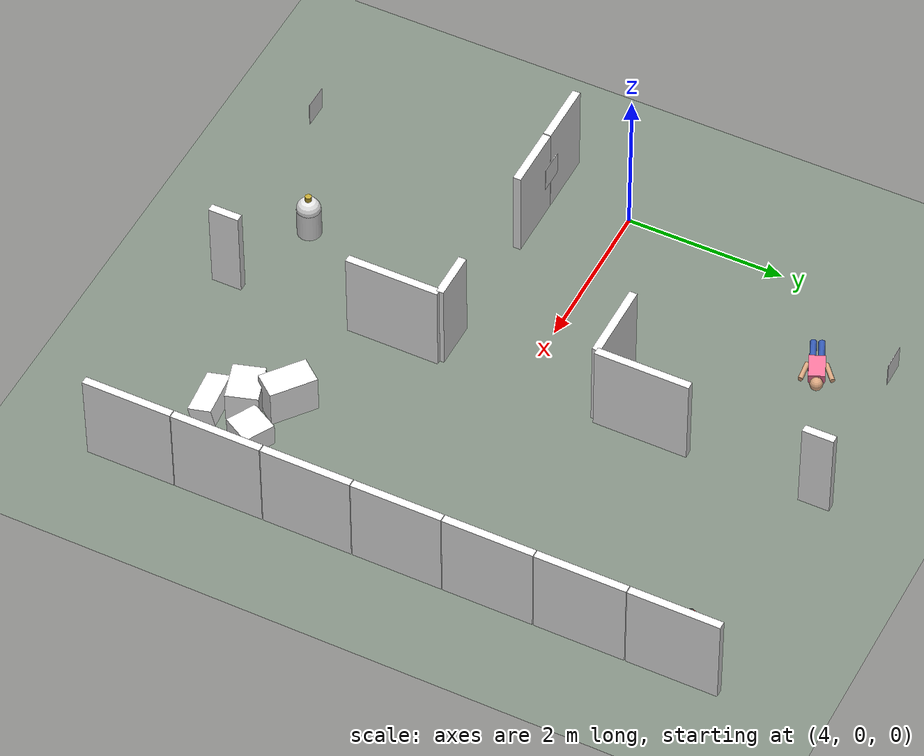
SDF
<sdf version="1.9">
 <world name="rescue_maze">
  <model name="ground_plane">
   <static>true</static>
   <link name="link">
    <collision name="collision">
     <geometry><plane><normal>0 0 1</normal><size>40 40</size></plane></geometry>
    </collision>
    <visual name="visual">
     <geometry><plane><normal>0 0 1</normal><size>40 40</size></plane></geometry>
     <material><ambient>0.5 0.55 0.5 1</ambient><diffuse>0.5 0.55 0.5 1</diffuse></material>
    </visual>
   </link>
  </model>
  <model name="wall_3">
   <static>true</static>
   <pose>10.000 0.000 0.6 0 0 1.5708</pose>
   <link name="link">
    <collision name="collision"><geometry><box><size>8.000 0.1 1.2</size></box></geometry></collision>
    <visual name="panel_0">
     <pose>-3.429 0 0 0 0 0</pose>
     <geometry><box><size>1.133 0.1 1.2</size></box></geometry>
     <material>
      <diffuse>1 1 1 1</diffuse>
      <specular>0.1 0.1 0.1 1</specular>
      <pbr>
       <metal><albedo_map>textures/plywood.jpg</albedo_map><roughness>0.9</roughness><metalness>0</metalness></metal>
      </pbr>
     </material>
    </visual>
    <visual name="panel_1">
     <pose>-2.286 0 0 0 0 0</pose>
     <geometry><box><size>1.133 0.1 1.2</size></box></geometry>
     <material>
      <diffuse>1 1 1 1</diffuse>
      <specular>0.1 0.1 0.1 1</specular>
      <pbr>
       <metal><albedo_map>textures/plywood.jpg</albedo_map><roughness>0.9</roughness><metalness>0</metalness></metal>
      </pbr>
     </material>
    </visual>
    <visual name="panel_2">
     <pose>-1.143 0 0 0 0 0</pose>
     <geometry><box><size>1.133 0.1 1.2</size></box></geometry>
     <material>
      <diffuse>1 1 1 1</diffuse>
      <specular>0.1 0.1 0.1 1</specular>
      <pbr>
       <metal><albedo_map>textures/plywood.jpg</albedo_map><roughness>0.9</roughness><metalness>0</metalness></metal>
      </pbr>
     </material>
    </visual>
    <visual name="panel_3">
     <geometry><box><size>1.133 0.1 1.2</size></box></geometry>
     <material>
      <diffuse>1 1 1 1</diffuse>
      <specular>0.1 0.1 0.1 1</specular>
      <pbr>
       <metal><albedo_map>textures/plywood.jpg</albedo_map><roughness>0.9</roughness><metalness>0</metalness></metal>
      </pbr>
     </material>
    </visual>
    <visual name="panel_4">
     <pose>1.143 0 0 0 0 0</pose>
     <geometry><box><size>1.133 0.1 1.2</size></box></geometry>
     <material>
      <diffuse>1 1 1 1</diffuse>
      <specular>0.1 0.1 0.1 1</specular>
      <pbr>
       <metal><albedo_map>textures/plywood.jpg</albedo_map><roughness>0.9</roughness><metalness>0</metalness></metal>
      </pbr>
     </material>
    </visual>
    <visual name="panel_5">
     <pose>2.286 0 0 0 0 0</pose>
     <geometry><box><size>1.133 0.1 1.2</size></box></geometry>
     <material>
      <diffuse>1 1 1 1</diffuse>
      <specular>0.1 0.1 0.1 1</specular>
      <pbr>
       <metal><albedo_map>textures/plywood.jpg</albedo_map><roughness>0.9</roughness><metalness>0</metalness></metal>
      </pbr>
     </material>
    </visual>
    <visual name="panel_6">
     <pose>3.429 0 0 0 0 0</pose>
     <geometry><box><size>1.133 0.1 1.2</size></box></geometry>
     <material>
      <diffuse>1 1 1 1</diffuse>
      <specular>0.1 0.1 0.1 1</specular>
      <pbr>
       <metal><albedo_map>textures/plywood.jpg</albedo_map><roughness>0.9</roughness><metalness>0</metalness></metal>
      </pbr>
     </material>
    </visual>
   </link>
  </model>
  <model name="wall_6">
   <static>true</static>
   <pose>6.500 1.000 0.6 0 0 0.0000</pose>
   <link name="link">
    <collision name="collision"><geometry><box><size>1.000 0.1 1.2</size></box></geometry></collision>
    <visual name="panel_0">
     <geometry><box><size>0.990 0.1 1.2</size></box></geometry>
     <material>
      <diffuse>1 1 1 1</diffuse>
      <specular>0.1 0.1 0.1 1</specular>
      <pbr>
       <metal><albedo_map>textures/plywood.jpg</albedo_map><roughness>0.9</roughness><metalness>0</metalness></metal>
      </pbr>
     </material>
    </visual>
   </link>
  </model>
  <model name="wall_8">
   <static>true</static>
   <pose>4.200 -1.000 0.6 0 0 0.0000</pose>
   <link name="link">
    <collision name="collision"><geometry><box><size>1.600 0.1 1.2</size></box></geometry></collision>
    <visual name="panel_0">
     <pose>-0.400 0 0 0 0 0</pose>
     <geometry><box><size>0.790 0.1 1.2</size></box></geometry>
     <material>
      <diffuse>1 1 1 1</diffuse>
      <specular>0.1 0.1 0.1 1</specular>
      <pbr>
       <metal><albedo_map>textures/plywood.jpg</albedo_map><roughness>0.9</roughness><metalness>0</metalness></metal>
      </pbr>
     </material>
    </visual>
    <visual name="panel_1">
     <pose>0.400 0 0 0 0 0</pose>
     <geometry><box><size>0.790 0.1 1.2</size></box></geometry>
     <material>
      <diffuse>1 1 1 1</diffuse>
      <specular>0.1 0.1 0.1 1</specular>
      <pbr>
       <metal><albedo_map>textures/plywood.jpg</albedo_map><roughness>0.9</roughness><metalness>0</metalness></metal>
      </pbr>
     </material>
    </visual>
   </link>
  </model>
  <model name="wall_9">
   <static>true</static>
   <pose>6.700 -1.000 0.6 0 0 0.0000</pose>
   <link name="link">
    <collision name="collision"><geometry><box><size>0.600 0.1 1.2</size></box></geometry></collision>
    <visual name="panel_0">
     <geometry><box><size>0.590 0.1 1.2</size></box></geometry>
     <material>
      <diffuse>1 1 1 1</diffuse>
      <specular>0.1 0.1 0.1 1</specular>
      <pbr>
       <metal><albedo_map>textures/plywood.jpg</albedo_map><roughness>0.9</roughness><metalness>0</metalness></metal>
      </pbr>
     </material>
    </visual>
   </link>
  </model>
  <model name="wall_12">
   <static>true</static>
   <pose>7.000 1.600 0.6 0 0 1.5708</pose>
   <link name="link">
    <collision name="collision"><geometry><box><size>1.200 0.1 1.2</size></box></geometry></collision>
    <visual name="panel_0">
     <geometry><box><size>1.190 0.1 1.2</size></box></geometry>
     <material>
      <diffuse>1 1 1 1</diffuse>
      <specular>0.1 0.1 0.1 1</specular>
      <pbr>
       <metal><albedo_map>textures/plywood.jpg</albedo_map><roughness>0.9</roughness><metalness>0</metalness></metal>
      </pbr>
     </material>
    </visual>
   </link>
  </model>
  <model name="wall_13">
   <static>true</static>
   <pose>7.000 3.800 0.6 0 0 1.5708</pose>
   <link name="link">
    <collision name="collision"><geometry><box><size>0.400 0.1 1.2</size></box></geometry></collision>
    <visual name="panel_0">
     <geometry><box><size>0.390 0.1 1.2</size></box></geometry>
     <material>
      <diffuse>1 1 1 1</diffuse>
      <specular>0.1 0.1 0.1 1</specular>
      <pbr>
       <metal><albedo_map>textures/plywood.jpg</albedo_map><roughness>0.9</roughness><metalness>0</metalness></metal>
      </pbr>
     </material>
    </visual>
   </link>
  </model>
  <model name="wall_14">
   <static>true</static>
   <pose>7.000 -3.800 0.6 0 0 1.5708</pose>
   <link name="link">
    <collision name="collision"><geometry><box><size>0.400 0.1 1.2</size></box></geometry></collision>
    <visual name="panel_0">
     <geometry><box><size>0.390 0.1 1.2</size></box></geometry>
     <material>
      <diffuse>1 1 1 1</diffuse>
      <specular>0.1 0.1 0.1 1</specular>
      <pbr>
       <metal><albedo_map>textures/plywood.jpg</albedo_map><roughness>0.9</roughness><metalness>0</metalness></metal>
      </pbr>
     </material>
    </visual>
   </link>
  </model>
  <model name="wall_15">
   <static>true</static>
   <pose>7.000 -1.600 0.6 0 0 1.5708</pose>
   <link name="link">
    <collision name="collision"><geometry><box><size>1.200 0.1 1.2</size></box></geometry></collision>
    <visual name="panel_0">
     <geometry><box><size>1.190 0.1 1.2</size></box></geometry>
     <material>
      <diffuse>1 1 1 1</diffuse>
      <specular>0.1 0.1 0.1 1</specular>
      <pbr>
       <metal><albedo_map>textures/plywood.jpg</albedo_map><roughness>0.9</roughness><metalness>0</metalness></metal>
      </pbr>
     </material>
    </visual>
   </link>
  </model>
  <model name="sign_1_hazmat_corrosive">
   <static>true</static>
   <pose>4.2 -0.94 0.6 0 0 1.5708</pose>
   <link name="link">
    <visual name="board">
     <geometry><box><size>0.008 0.32 0.32</size></box></geometry>
     <material>
      <diffuse>1 1 1 1</diffuse>
      <specular>0.1 0.1 0.1 1</specular>
      <pbr>
       <metal>
        <albedo_map>textures/hazmat_corrosive.png</albedo_map>
        <roughness>0.9</roughness>
        <metalness>0</metalness>
       </metal>
      </pbr>
     </material>
    </visual>
   </link>
  </model>
  <model name="sign_2_hazmat_poison">
   <static>true</static>
   <pose>5.2 3.94 0.6 0 0 -1.5708</pose>
   <link name="link">
    <visual name="board">
     <geometry><box><size>0.008 0.32 0.32</size></box></geometry>
     <material>
      <diffuse>1 1 1 1</diffuse>
      <specular>0.1 0.1 0.1 1</specular>
      <pbr>
       <metal>
        <albedo_map>textures/hazmat_poison.png</albedo_map>
        <roughness>0.9</roughness>
        <metalness>0</metalness>
       </metal>
      </pbr>
     </material>
    </visual>
   </link>
  </model>
  <model name="sign_4_hazmat_explosive">
   <static>true</static>
   <pose>9.94 2.0 0.6 0 0 3.1416</pose>
   <link name="link">
    <visual name="board">
     <geometry><box><size>0.008 0.32 0.32</size></box></geometry>
     <material>
      <diffuse>1 1 1 1</diffuse>
      <specular>0.1 0.1 0.1 1</specular>
      <pbr>
       <metal>
        <albedo_map>textures/hazmat_explosive.png</albedo_map>
        <roughness>0.9</roughness>
        <metalness>0</metalness>
       </metal>
      </pbr>
     </material>
    </visual>
   </link>
  </model>
  <model name="sign_5_hazmat_dangerous_when_wet">
   <static>true</static>
   <pose>4.5 -3.94 0.6 0 0 1.5708</pose>
   <link name="link">
    <visual name="board">
     <geometry><box><size>0.008 0.32 0.32</size></box></geometry>
     <material>
      <diffuse>1 1 1 1</diffuse>
      <specular>0.1 0.1 0.1 1</specular>
      <pbr>
       <metal>
        <albedo_map>textures/hazmat_dangerous_when_wet.png</albedo_map>
        <roughness>0.9</roughness>
        <metalness>0</metalness>
       </metal>
      </pbr>
     </material>
    </visual>
   </link>
  </model>
  <model name="sign_7_end_sign">
   <static>true</static>
   <pose>9.94 0.0 0.6 0 0 3.1416</pose>
   <link name="link">
    <visual name="board">
     <geometry><box><size>0.008 0.6 0.6</size></box></geometry>
     <material>
      <diffuse>1 1 1 1</diffuse>
      <specular>0.1 0.1 0.1 1</specular>
      <pbr>
       <metal>
        <albedo_map>textures/end_sign.png</albedo_map>
        <roughness>0.9</roughness>
        <metalness>0</metalness>
       </metal>
      </pbr>
     </material>
    </visual>
   </link>
  </model>
  <model name="victim_doll">
   <static>true</static>
   <pose>5.2 3.0 0 0 0 0.4</pose>
   <link name="link">
    <collision name="torso_collision">
     <pose>0 0 0.07 0 0 0</pose>
     <geometry><box><size>0.32 0.2 0.12</size></box></geometry>
    </collision>
    <visual name="torso">
     <pose>0 0 0.07 0 0 0</pose>
     <geometry><box><size>0.32 0.2 0.12</size></box></geometry>
     <material>
      <ambient>0.95 0.45 0.6 1</ambient>
      <diffuse>0.95 0.45 0.6 1</diffuse>
      <specular>0.1 0.1 0.1 1</specular>
     </material>
    </visual>
    <collision name="head_collision">
     <pose>0.24 0 0.08 0 0 0</pose>
     <geometry><sphere><radius>0.08</radius></sphere></geometry>
    </collision>
    <visual name="head">
     <pose>0.24 0 0.08 0 0 0</pose>
     <geometry><sphere><radius>0.08</radius></sphere></geometry>
     <material>
      <ambient>0.85 0.65 0.5 1</ambient>
      <diffuse>0.85 0.65 0.5 1</diffuse>
      <specular>0.1 0.1 0.1 1</specular>
     </material>
    </visual>
    <collision name="leg_left_collision">
     <pose>-0.3 0.05 0.04 0 1.5708 0</pose>
     <geometry><cylinder><radius>0.04</radius><length>0.3</length></cylinder></geometry>
    </collision>
    <visual name="leg_left">
     <pose>-0.3 0.05 0.04 0 1.5708 0</pose>
     <geometry><cylinder><radius>0.04</radius><length>0.3</length></cylinder></geometry>
     <material>
      <ambient>0.2 0.35 0.7 1</ambient>
      <diffuse>0.2 0.35 0.7 1</diffuse>
      <specular>0.1 0.1 0.1 1</specular>
     </material>
    </visual>
    <collision name="leg_right_collision">
     <pose>-0.3 -0.05 0.04 0 1.5708 0</pose>
     <geometry><cylinder><radius>0.04</radius><length>0.3</length></cylinder></geometry>
    </collision>
    <visual name="leg_right">
     <pose>-0.3 -0.05 0.04 0 1.5708 0</pose>
     <geometry><cylinder><radius>0.04</radius><length>0.3</length></cylinder></geometry>
     <material>
      <ambient>0.2 0.35 0.7 1</ambient>
      <diffuse>0.2 0.35 0.7 1</diffuse>
      <specular>0.1 0.1 0.1 1</specular>
     </material>
    </visual>
    <collision name="arm_left_collision">
     <pose>0.02 0.15 0.04 0 1.5708 0.3</pose>
     <geometry><cylinder><radius>0.03</radius><length>0.26</length></cylinder></geometry>
    </collision>
    <visual name="arm_left">
     <pose>0.02 0.15 0.04 0 1.5708 0.3</pose>
     <geometry><cylinder><radius>0.03</radius><length>0.26</length></cylinder></geometry>
     <material>
      <ambient>0.85 0.65 0.5 1</ambient>
      <diffuse>0.85 0.65 0.5 1</diffuse>
      <specular>0.1 0.1 0.1 1</specular>
     </material>
    </visual>
    <collision name="arm_right_collision">
     <pose>0.02 -0.15 0.04 0 1.5708 -0.3</pose>
     <geometry><cylinder><radius>0.03</radius><length>0.26</length></cylinder></geometry>
    </collision>
    <visual name="arm_right">
     <pose>0.02 -0.15 0.04 0 1.5708 -0.3</pose>
     <geometry><cylinder><radius>0.03</radius><length>0.26</length></cylinder></geometry>
     <material>
      <ambient>0.85 0.65 0.5 1</ambient>
      <diffuse>0.85 0.65 0.5 1</diffuse>
      <specular>0.1 0.1 0.1 1</specular>
     </material>
    </visual>
   </link>
  </model>
  <model name="fire_extinguisher">
   <static>true</static>
   <pose>9.5 3.4 0 0 0 0</pose>
   <link name="link">
    <collision name="body_collision">
     <pose>0 0 0.25 0 0 0</pose>
     <geometry><cylinder><radius>0.08</radius><length>0.5</length></cylinder></geometry>
    </collision>
    <visual name="body">
     <pose>0 0 0.25 0 0 0</pose>
     <geometry><cylinder><radius>0.08</radius><length>0.5</length></cylinder></geometry>
     <material>
      <ambient>0.8 0.08 0.08 1</ambient>
      <diffuse>0.8 0.08 0.08 1</diffuse>
      <specular>0.1 0.1 0.1 1</specular>
     </material>
    </visual>
    <collision name="head_collision">
     <pose>0 0 0.54 0 0 0</pose>
     <geometry><cylinder><radius>0.03</radius><length>0.08</length></cylinder></geometry>
    </collision>
    <visual name="head">
     <pose>0 0 0.54 0 0 0</pose>
     <geometry><cylinder><radius>0.03</radius><length>0.08</length></cylinder></geometry>
     <material>
      <ambient>0.2 0.2 0.2 1</ambient>
      <diffuse>0.2 0.2 0.2 1</diffuse>
      <specular>0.1 0.1 0.1 1</specular>
     </material>
    </visual>
    <collision name="hose_collision">
     <pose>0.07 0 0.45 0 0.6 0</pose>
     <geometry><cylinder><radius>0.012</radius><length>0.2</length></cylinder></geometry>
    </collision>
    <visual name="hose">
     <pose>0.07 0 0.45 0 0.6 0</pose>
     <geometry><cylinder><radius>0.012</radius><length>0.2</length></cylinder></geometry>
     <material>
      <ambient>0.1 0.1 0.1 1</ambient>
      <diffuse>0.1 0.1 0.1 1</diffuse>
      <specular>0.1 0.1 0.1 1</specular>
     </material>
    </visual>
   </link>
  </model>
  <model name="propane_tank">
   <static>true</static>
   <pose>5.9 -3.3 0 0 0 0</pose>
   <link name="link">
    <collision name="tank_collision">
     <pose>0 0 0.25 0 0 0</pose>
     <geometry><cylinder><radius>0.15</radius><length>0.4</length></cylinder></geometry>
    </collision>
    <visual name="tank">
     <pose>0 0 0.25 0 0 0</pose>
     <geometry><cylinder><radius>0.15</radius><length>0.4</length></cylinder></geometry>
     <material>
      <ambient>0.92 0.92 0.92 1</ambient>
      <diffuse>0.92 0.92 0.92 1</diffuse>
      <specular>0.1 0.1 0.1 1</specular>
     </material>
    </visual>
    <collision name="top_collision">
     <pose>0 0 0.45 0 0 0</pose>
     <geometry><sphere><radius>0.15</radius></sphere></geometry>
    </collision>
    <visual name="top">
     <pose>0 0 0.45 0 0 0</pose>
     <geometry><sphere><radius>0.15</radius></sphere></geometry>
     <material>
      <ambient>0.92 0.92 0.92 1</ambient>
      <diffuse>0.92 0.92 0.92 1</diffuse>
      <specular>0.1 0.1 0.1 1</specular>
     </material>
    </visual>
    <collision name="valve_collision">
     <pose>0 0 0.62 0 0 0</pose>
     <geometry><cylinder><radius>0.04</radius><length>0.08</length></cylinder></geometry>
    </collision>
    <visual name="valve">
     <pose>0 0 0.62 0 0 0</pose>
     <geometry><cylinder><radius>0.04</radius><length>0.08</length></cylinder></geometry>
     <material>
      <ambient>0.75 0.65 0.2 1</ambient>
      <diffuse>0.75 0.65 0.2 1</diffuse>
      <specular>0.1 0.1 0.1 1</specular>
     </material>
    </visual>
   </link>
  </model>
  <model name="debris">
   <static>true</static>
   <pose>8.6 -2.7 0 0 0 0</pose>
   <link name="link">
    <collision name="box_0_collision">
     <pose>0 0 0.2 0 0 0.3</pose>
     <geometry><box><size>0.5 0.4 0.4</size></box></geometry>
    </collision>
    <visual name="box_0">
     <pose>0 0 0.2 0 0 0.3</pose>
     <geometry><box><size>0.5 0.4 0.4</size></box></geometry>
     <material>
      <diffuse>1 1 1 1</diffuse>
      <specular>0.1 0.1 0.1 1</specular>
      <pbr>
       <metal>
        <albedo_map>textures/cardboard.jpg</albedo_map>
        <roughness>0.9</roughness>
        <metalness>0</metalness>
       </metal>
      </pbr>
     </material>
    </visual>
    <collision name="box_1_collision">
     <pose>0.45 0.3 0.15 0 0 -0.5</pose>
     <geometry><box><size>0.4 0.4 0.3</size></box></geometry>
    </collision>
    <visual name="box_1">
     <pose>0.45 0.3 0.15 0 0 -0.5</pose>
     <geometry><box><size>0.4 0.4 0.3</size></box></geometry>
     <material>
      <diffuse>1 1 1 1</diffuse>
      <specular>0.1 0.1 0.1 1</specular>
      <pbr>
       <metal>
        <albedo_map>textures/cardboard.jpg</albedo_map>
        <roughness>0.9</roughness>
        <metalness>0</metalness>
       </metal>
      </pbr>
     </material>
    </visual>
    <collision name="box_2_collision">
     <pose>-0.2 0.45 0.25 0 0 0.9</pose>
     <geometry><box><size>0.35 0.6 0.5</size></box></geometry>
    </collision>
    <visual name="box_2">
     <pose>-0.2 0.45 0.25 0 0 0.9</pose>
     <geometry><box><size>0.35 0.6 0.5</size></box></geometry>
     <material>
      <diffuse>1 1 1 1</diffuse>
      <specular>0.1 0.1 0.1 1</specular>
      <pbr>
       <metal>
        <albedo_map>textures/cardboard.jpg</albedo_map>
        <roughness>0.9</roughness>
        <metalness>0</metalness>
       </metal>
      </pbr>
     </material>
    </visual>
    <collision name="box_3_collision">
     <pose>0.2 -0.35 0.12 0.2 0 0.1</pose>
     <geometry><box><size>0.6 0.3 0.24</size></box></geometry>
    </collision>
    <visual name="box_3">
     <pose>0.2 -0.35 0.12 0.2 0 0.1</pose>
     <geometry><box><size>0.6 0.3 0.24</size></box></geometry>
     <material>
      <diffuse>1 1 1 1</diffuse>
      <specular>0.1 0.1 0.1 1</specular>
      <pbr>
       <metal>
        <albedo_map>textures/cardboard.jpg</albedo_map>
        <roughness>0.9</roughness>
        <metalness>0</metalness>
       </metal>
      </pbr>
     </material>
    </visual>
   </link>
  </model>
 </world>
</sdf>
